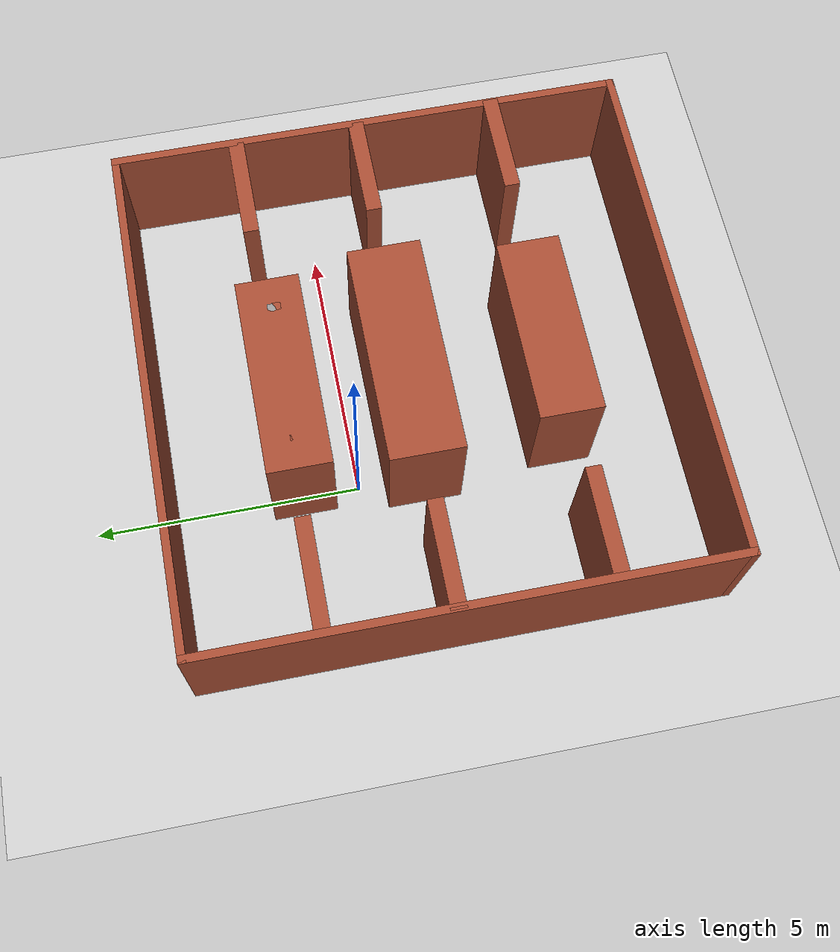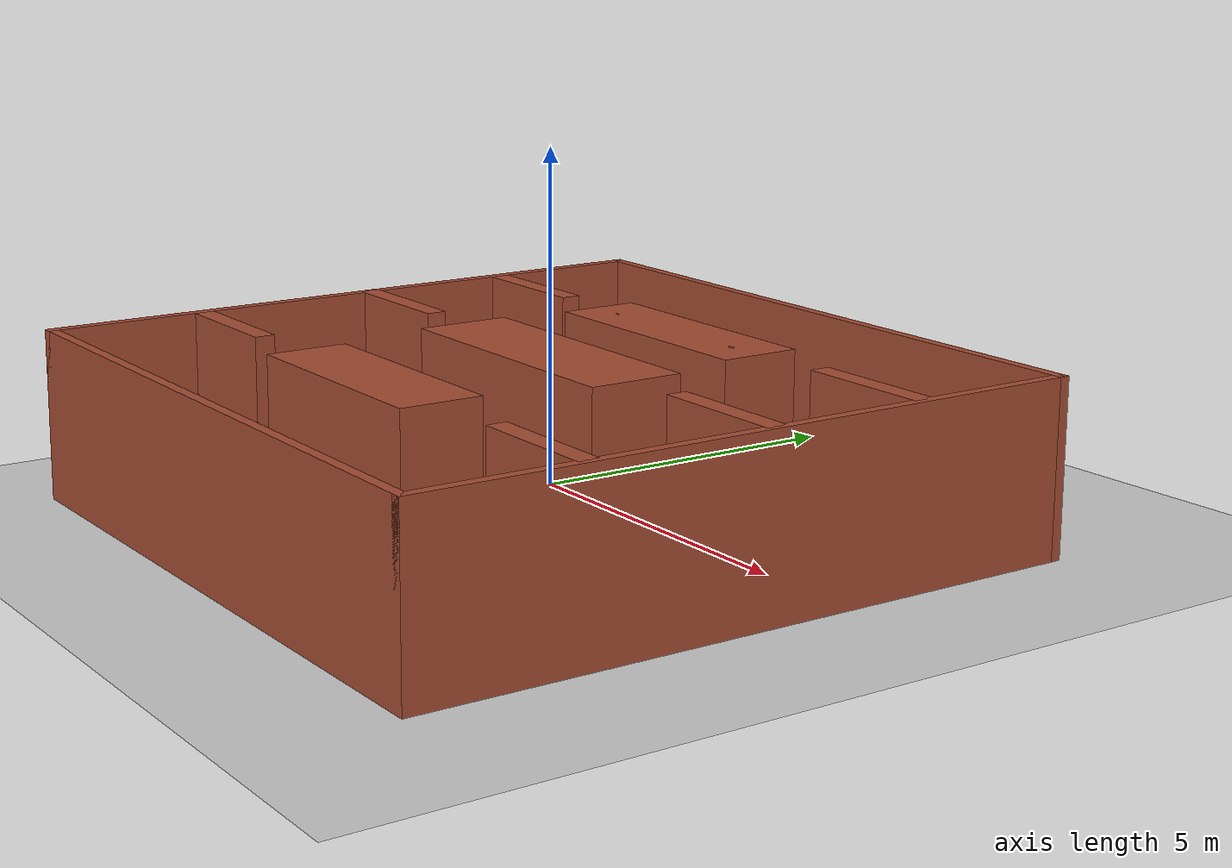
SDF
<sdf version="1.6">
 <world name="__default__">
  <gravity>0 0 -9.8</gravity>
  <magnetic_field>6e-06 2.3e-05 -4.2e-05</magnetic_field>
  <atmosphere type="adiabatic"/>
  <physics name="default_physics" default="0" type="ode">
   <max_step_size>0.001</max_step_size>
   <real_time_factor>1</real_time_factor>
   <real_time_update_rate>1000</real_time_update_rate>
  </physics>
  <scene><ambient>0.4 0.4 0.4 1</ambient><background>0.7 0.7 0.7 1</background><shadows>1</shadows></scene>
  <spherical_coordinates>
   <surface_model>EARTH_WGS84</surface_model>
   <latitude_deg>0</latitude_deg>
   <longitude_deg>0</longitude_deg>
   <elevation>0</elevation>
   <heading_deg>0</heading_deg>
  </spherical_coordinates>
  <model name="acme_office">
   <pose>1.66504 -1.39064 0 0 -0 0</pose>
   <link name="Wall_0">
    <collision name="Wall_0_Collision">
     <geometry><box><size>10 0.15 2.5</size></box></geometry>
     <pose>0 0 1.25 0 -0 0</pose>
    </collision>
    <visual name="Wall_0_Visual">
     <pose>0 0 1.25 0 -0 0</pose>
     <geometry><box><size>10 0.15 2.5</size></box></geometry>
     <material>
      <script><uri>file://media/materials/scripts/gazebo.material</uri><name>Gazebo/Bricks</name></script>
      <ambient>1 1 1 1</ambient>
     </material>
     <meta><layer>0</layer></meta>
    </visual>
    <pose>0 -4.925 0 0 -0 0</pose>
   </link>
   <link name="Wall_101">
    <collision name="Wall_101_Collision">
     <geometry><box><size>3.8 1.2 2.5</size></box></geometry>
     <pose>0 0 1.25 0 -0 0</pose>
    </collision>
    <visual name="Wall_101_Visual">
     <pose>0 0 1.25 0 -0 0</pose>
     <geometry><box><size>3.8 1.2 2.5</size></box></geometry>
     <material>
      <script><uri>file://media/materials/scripts/gazebo.material</uri><name>Gazebo/Bricks</name></script>
      <ambient>1 1 1 1</ambient>
     </material>
     <meta><layer>0</layer></meta>
    </visual>
    <pose>-0.068 2.452 0 0 -0 0</pose>
   </link>
   <link name="Wall_27">
    <collision name="Wall_27_Collision">
     <geometry><box><size>10 0.15 2.5</size></box></geometry>
     <pose>0 0 1.25 0 -0 0</pose>
    </collision>
    <visual name="Wall_27_Visual">
     <pose>0 0 1.25 0 -0 0</pose>
     <geometry><box><size>10 0.15 2.5</size></box></geometry>
     <material>
      <script><uri>file://media/materials/scripts/gazebo.material</uri><name>Gazebo/Bricks</name></script>
      <ambient>1 1 1 1</ambient>
     </material>
     <meta><layer>0</layer></meta>
    </visual>
    <pose>-4.925 0 0 0 -0 1.5708</pose>
   </link>
   <link name="Wall_29">
    <collision name="Wall_29_Collision">
     <geometry><box><size>10 0.15 2.5</size></box></geometry>
     <pose>0 0 1.25 0 -0 0</pose>
    </collision>
    <visual name="Wall_29_Visual">
     <pose>0 0 1.25 0 -0 0</pose>
     <geometry><box><size>10 0.15 2.5</size></box></geometry>
     <material>
      <script><uri>file://media/materials/scripts/gazebo.material</uri><name>Gazebo/Bricks</name></script>
      <ambient>1 1 1 1</ambient>
     </material>
     <meta><layer>0</layer></meta>
    </visual>
    <pose>4.925 0 0 0 -0 1.5708</pose>
   </link>
   <link name="Wall_32">
    <collision name="Wall_32_Collision">
     <geometry><box><size>10 0.15 2.5</size></box></geometry>
     <pose>0 0 1.25 0 -0 0</pose>
    </collision>
    <visual name="Wall_32_Visual">
     <pose>0 0 1.25 0 -0 0</pose>
     <geometry><box><size>10 0.15 2.5</size></box></geometry>
     <material>
      <script><uri>file://media/materials/scripts/gazebo.material</uri><name>Gazebo/Bricks</name></script>
      <ambient>1 1 1 1</ambient>
     </material>
     <meta><layer>0</layer></meta>
    </visual>
    <pose>0 4.925 0 0 -0 0</pose>
   </link>
   <link name="Wall_35">
    <collision name="Wall_35_Collision">
     <geometry><box><size>2 0.3 2.5</size></box></geometry>
     <pose>0 0 1.25 0 -0 0</pose>
    </collision>
    <visual name="Wall_35_Visual">
     <pose>0 0 1.25 0 -0 0</pose>
     <geometry><box><size>2 0.3 2.5</size></box></geometry>
     <material>
      <script><uri>file://media/materials/scripts/gazebo.material</uri><name>Gazebo/Bricks</name></script>
      <ambient>1 1 1 1</ambient>
     </material>
     <meta><layer>0</layer></meta>
    </visual>
    <pose>-3.85146 2.55781 0 0 -0 0</pose>
   </link>
   <link name="Wall_38">
    <collision name="Wall_38_Collision">
     <geometry><box><size>2 0.3 2.5</size></box></geometry>
     <pose>0 0 1.25 0 -0 0</pose>
    </collision>
    <visual name="Wall_38_Visual">
     <pose>0 0 1.25 0 -0 0</pose>
     <geometry><box><size>2 0.3 2.5</size></box></geometry>
     <material>
      <script><uri>file://media/materials/scripts/gazebo.material</uri><name>Gazebo/Bricks</name></script>
      <ambient>1 1 1 1</ambient>
     </material>
     <meta><layer>0</layer></meta>
    </visual>
    <pose>3.90305 2.575 0 0 -0 3.14159</pose>
   </link>
   <link name="Wall_50">
    <collision name="Wall_50_Collision">
     <geometry><box><size>2 0.3 2.5</size></box></geometry>
     <pose>0 0 1.25 0 -0 0</pose>
    </collision>
    <visual name="Wall_50_Visual">
     <pose>0 0 1.25 0 -0 0</pose>
     <geometry><box><size>2 0.3 2.5</size></box></geometry>
     <material>
      <script><uri>file://media/materials/scripts/gazebo.material</uri><name>Gazebo/Bricks</name></script>
      <ambient>1 1 1 1</ambient>
     </material>
     <meta><layer>0</layer></meta>
    </visual>
    <pose>-3.95974 0.242195 0 0 -0 0</pose>
   </link>
   <link name="Wall_53">
    <collision name="Wall_53_Collision">
     <geometry><box><size>2 0.3 2.5</size></box></geometry>
     <pose>0 0 1.25 0 -0 0</pose>
    </collision>
    <visual name="Wall_53_Visual">
     <pose>0 0 1.25 0 -0 0</pose>
     <geometry><box><size>2 0.3 2.5</size></box></geometry>
     <material>
      <script><uri>file://media/materials/scripts/gazebo.material</uri><name>Gazebo/Bricks</name></script>
      <ambient>1 1 1 1</ambient>
     </material>
     <meta><layer>0</layer></meta>
    </visual>
    <pose>-3.89703 -2.59387 0 0 -0 0</pose>
   </link>
   <link name="Wall_64">
    <collision name="Wall_64_Collision">
     <geometry><box><size>2 0.3 2.5</size></box></geometry>
     <pose>0 0 1.25 0 -0 0</pose>
    </collision>
    <visual name="Wall_64_Visual">
     <pose>0 0 1.25 0 -0 0</pose>
     <geometry><box><size>2 0.3 2.5</size></box></geometry>
     <material>
      <script><uri>file://media/materials/scripts/gazebo.material</uri><name>Gazebo/Bricks</name></script>
      <ambient>1 1 1 1</ambient>
     </material>
     <meta><layer>0</layer></meta>
    </visual>
    <pose>3.93744 0.207804 0 0 -0 0</pose>
   </link>
   <link name="Wall_77">
    <collision name="Wall_77_Collision">
     <geometry><box><size>3.57 1.2 2.5</size></box></geometry>
     <pose>0 0 1.25 0 -0 0</pose>
    </collision>
    <visual name="Wall_77_Visual">
     <pose>0 0 1.25 0 -0 0</pose>
     <geometry><box><size>3.57 1.2 2.5</size></box></geometry>
     <material>
      <script><uri>file://media/materials/scripts/gazebo.material</uri><name>Gazebo/Bricks</name></script>
      <ambient>1 1 1 1</ambient>
     </material>
     <meta><layer>0</layer></meta>
    </visual>
    <pose>-0.06 -2.495 0 0 -0 0</pose>
   </link>
   <link name="Wall_80">
    <collision name="Wall_80_Collision">
     <geometry><box><size>2 0.3 2.5</size></box></geometry>
     <pose>0 0 1.25 0 -0 0</pose>
    </collision>
    <visual name="Wall_80_Visual">
     <pose>0 0 1.25 0 -0 0</pose>
     <geometry><box><size>2 0.3 2.5</size></box></geometry>
     <material>
      <script><uri>file://media/materials/scripts/gazebo.material</uri><name>Gazebo/Bricks</name></script>
      <ambient>1 1 1 1</ambient>
     </material>
     <meta><layer>0</layer></meta>
    </visual>
    <pose>3.975 -2.495 0 0 -0 0</pose>
   </link>
   <link name="Wall_85">
    <collision name="Wall_85_Collision">
     <geometry><box><size>4.25048 1.4 2.5</size></box></geometry>
     <pose>0 0 1.25 0 -0 0</pose>
    </collision>
    <visual name="Wall_85_Visual">
     <pose>0 0 1.25 0 -0 0</pose>
     <geometry><box><size>4.25048 1.4 2.5</size></box></geometry>
     <material>
      <script><uri>file://media/materials/scripts/gazebo.material</uri><name>Gazebo/Bricks</name></script>
      <ambient>1 1 1 1</ambient>
     </material>
     <meta><layer>0</layer></meta>
    </visual>
    <pose>-0.004 0.188 0 0 -0 3.14159</pose>
   </link>
   <link name="Wall_90">
    <collision name="Wall_90_Collision">
     <geometry><box><size>0.15 0.15 2.5</size></box></geometry>
     <pose>0 0 1.25 0 -0 0</pose>
    </collision>
    <visual name="Wall_90_Visual">
     <pose>0 0 1.25 0 -0 0</pose>
     <geometry><box><size>0.15 0.15 2.5</size></box></geometry>
     <material>
      <script><uri>file://media/materials/scripts/gazebo.material</uri><name>Gazebo/Grey</name></script>
      <ambient>1 1 1 1</ambient>
     </material>
     <meta><layer>0</layer></meta>
    </visual>
    <pose>1.232 2.452 0 0 -0 0</pose>
   </link>
   <link name="Wall_92">
    <collision name="Wall_92_Collision">
     <geometry><box><size>0.15 0.15 2.5</size></box></geometry>
     <pose>0 0 1.25 0 -0 0</pose>
    </collision>
    <visual name="Wall_92_Visual">
     <pose>0 0 1.25 0 -0 0</pose>
     <geometry><box><size>0.15 0.15 2.5</size></box></geometry>
     <material>
      <script><uri>file://media/materials/scripts/gazebo.material</uri><name>Gazebo/Bricks</name></script>
      <ambient>1 1 1 1</ambient>
     </material>
     <meta><layer>0</layer></meta>
    </visual>
    <pose>-1.368 2.452 0 0 -0 0</pose>
   </link>
   <link name="Wall_95">
    <collision name="Wall_95_Collision">
     <geometry><box><size>0.15 0.15 2.5</size></box></geometry>
     <pose>0 0 1.25 0 -0 0</pose>
    </collision>
    <visual name="Wall_95_Visual">
     <pose>0 0 1.25 0 -0 0</pose>
     <geometry><box><size>0.15 0.15 2.5</size></box></geometry>
     <material>
      <script><uri>file://media/materials/scripts/gazebo.material</uri><name>Gazebo/Bricks</name></script>
      <ambient>1 1 1 1</ambient>
     </material>
     <meta><layer>0</layer></meta>
    </visual>
    <pose>1.24644 2.35536 0 0 -0 0</pose>
   </link>
   <static>1</static>
  </model>
  <model name="ground_plane">
   <static>1</static>
   <link name="link">
    <collision name="collision">
     <geometry><plane><normal>0 0 1</normal><size>100 100</size></plane></geometry>
     <surface><friction><ode><mu>100</mu><mu2>50</mu2></ode></friction></surface>
    </collision>
    <visual name="visual">
     <cast_shadows>0</cast_shadows>
     <geometry><plane><normal>0 0 1</normal><size>100 100</size></plane></geometry>
     <material>
      <script><uri>file://media/materials/scripts/gazebo.material</uri><name>Gazebo/Grey</name></script>
     </material>
    </visual>
   </link>
   <pose>2.89213 -6.59601 0 0 -0 0</pose>
  </model>
 </world>
</sdf>
